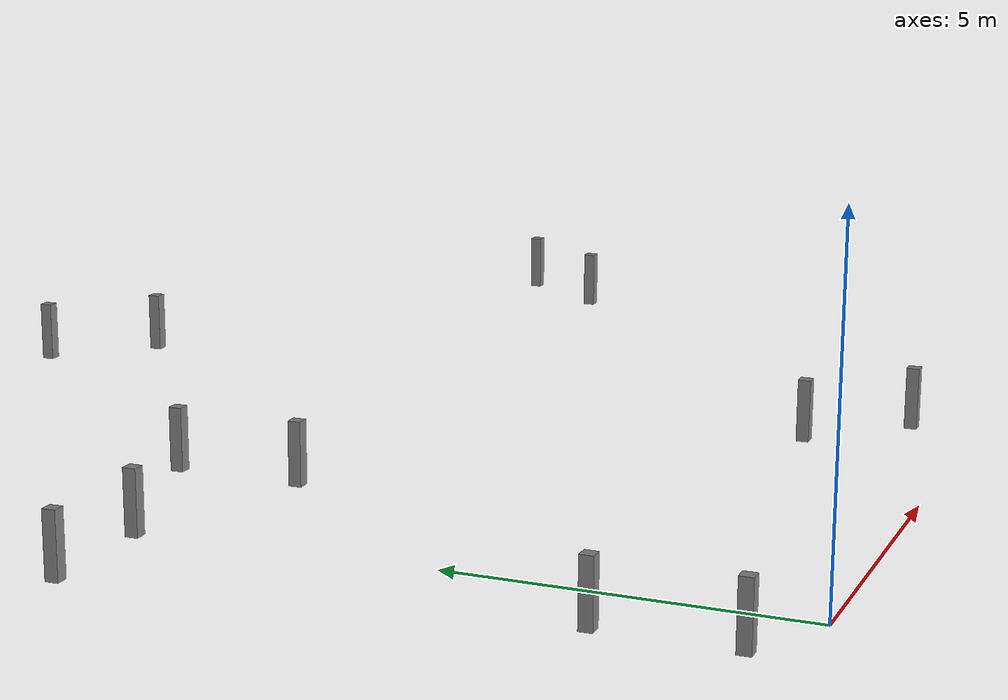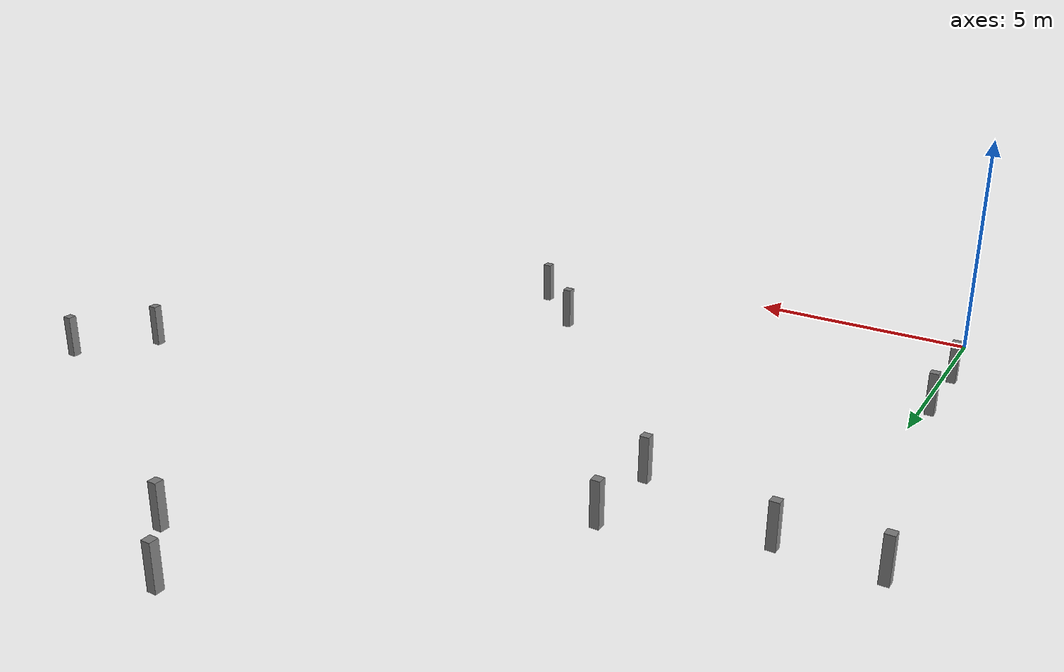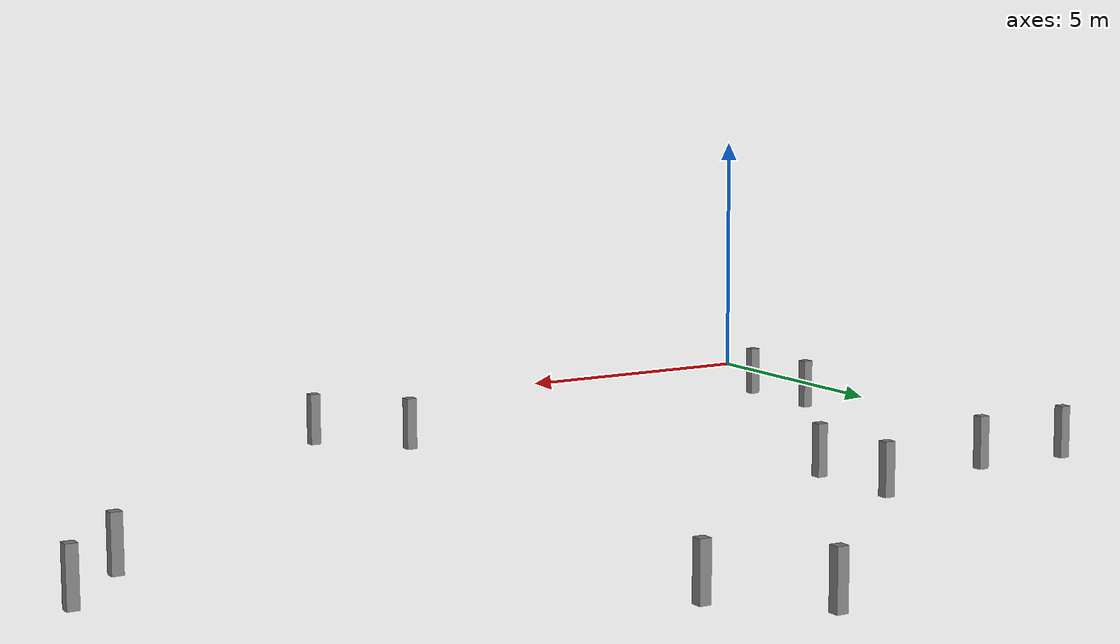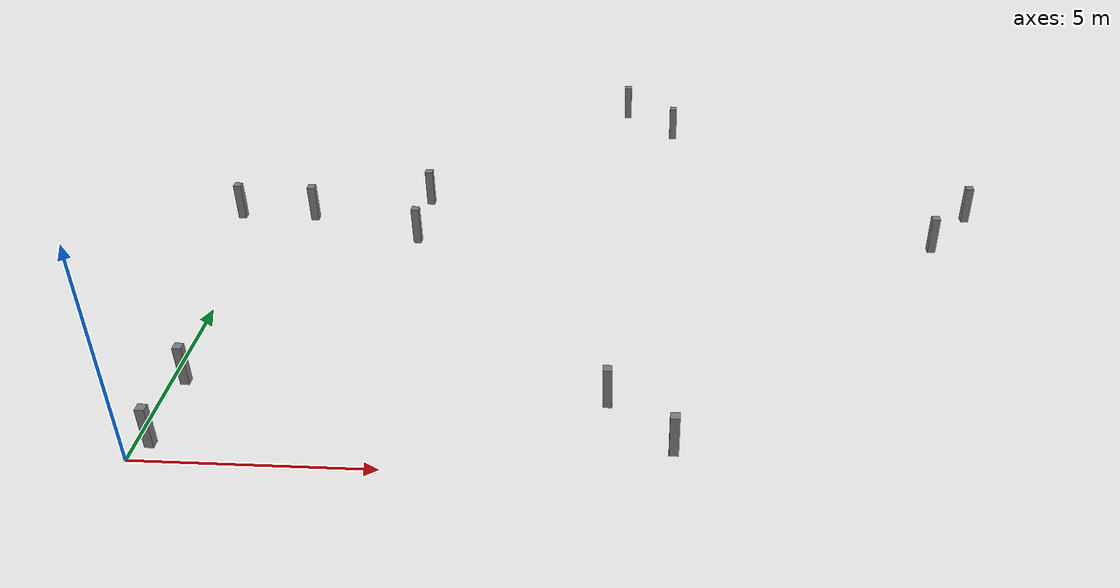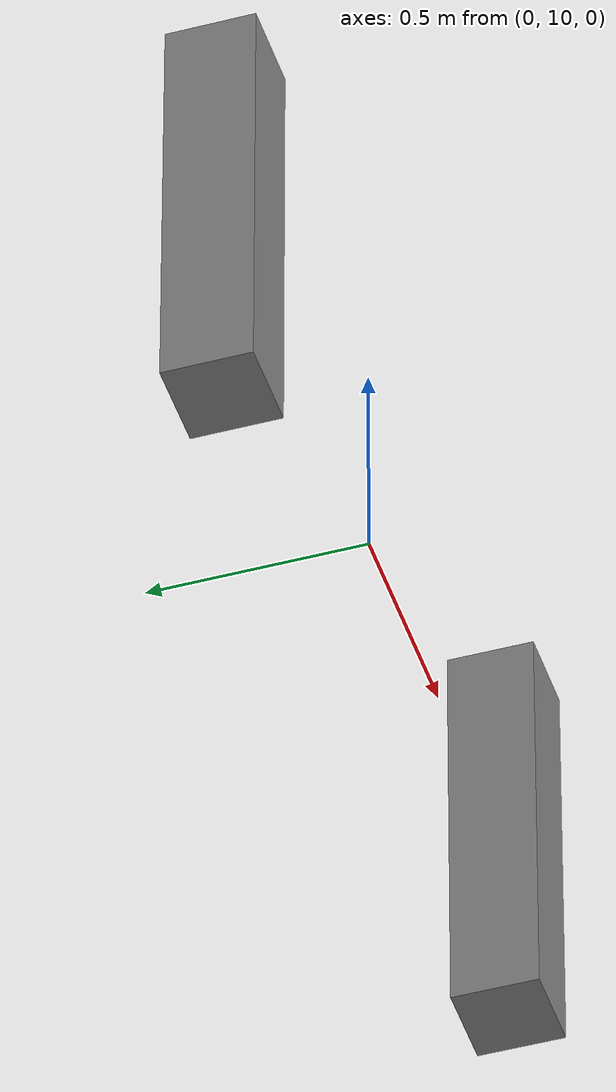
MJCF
<mujoco>
  <worldbody>
    <geom type="box" size="0.1 0.1 0.5" pos="0.0 3.0 0" />
    <geom type="box" size="0.1 0.1 0.5" pos="0.0 1.0 0" />
    <geom type="box" size="0.1 0.1 0.5" pos="9.292893218813452 2.7071067811865475 0" />
    <geom type="box" size="0.1 0.1 0.5" pos="10.707106781186548 1.2928932188134525 0" />
    <geom type="box" size="0.1 0.1 0.5" pos="17.4 9.2 0" />
    <geom type="box" size="0.1 0.1 0.5" pos="18.6 10.8 0" />
    <geom type="box" size="0.1 0.1 0.5" pos="10.707106781186548 15.292893218813452 0" />
    <geom type="box" size="0.1 0.1 0.5" pos="9.292893218813452 16.707106781186546 0" />
    <geom type="box" size="0.1 0.1 0.5" pos="4.0 9.0 0" />
    <geom type="box" size="0.1 0.1 0.5" pos="4.0 11.0 0" />
    <geom type="box" size="0.1 0.1 0.5" pos="1.0 10.0 0" />
    <geom type="box" size="0.1 0.1 0.5" pos="-1.0 10.0 0" />
  </worldbody>
</mujoco>
